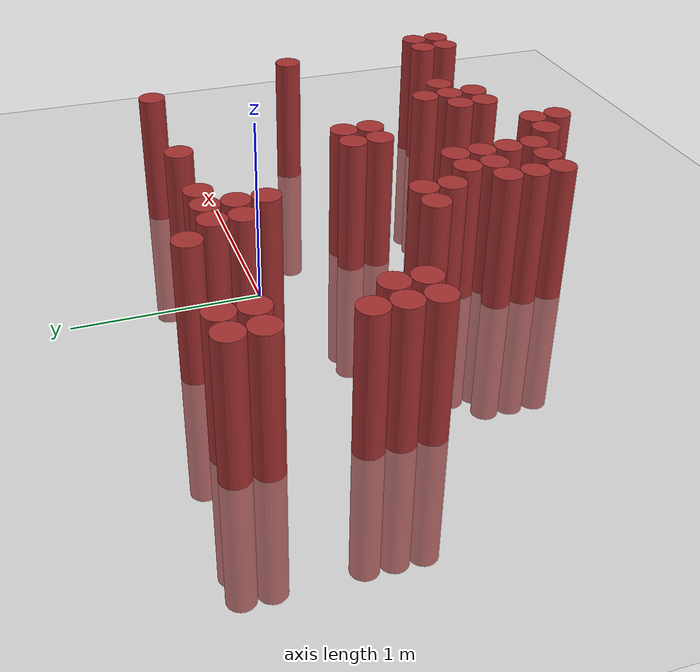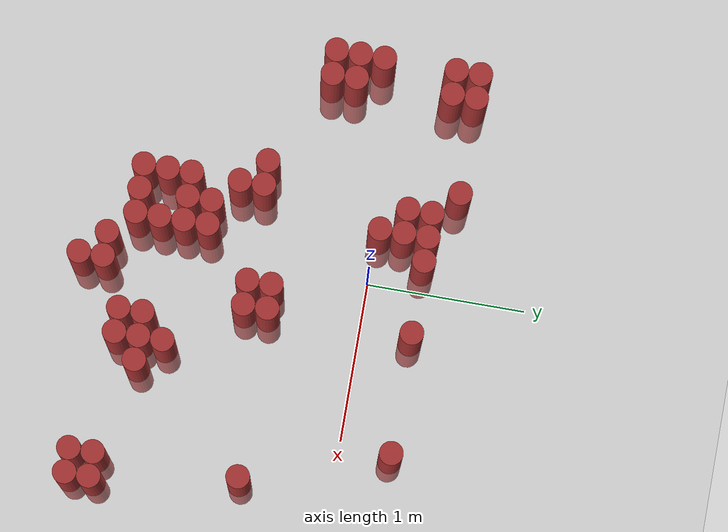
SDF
<sdf version="1.6">
 <world name="default">
  <model name="ground_plane">
   <static>1</static>
   <link name="link">
    <collision name="collision">
     <geometry><plane><normal>0 0 1</normal><size>100 100</size></plane></geometry>
     <surface><friction><ode><mu>100</mu><mu2>50</mu2></ode></friction></surface>
    </collision>
    <visual name="visual">
     <cast_shadows>0</cast_shadows>
     <geometry><plane><normal>0 0 1</normal><size>100 100</size></plane></geometry>
     <material>
      <script><uri>file://media/materials/scripts/gazebo.material</uri><name>Gazebo/Grey</name></script>
     </material>
    </visual>
   </link>
  </model>
  <model name="unit_cylinder_318">
   <static>1</static>
   <pose>-1.325000 -0.425000 0.000000 0.000000 0.000000 0.000000</pose>
   <link name="link">
    <inertial>
     <mass>1</mass>
     <inertia><ixx>0.145833</ixx><ixy>0</ixy><ixz>0</ixz><iyy>0.145833</iyy><iyz>0</iyz><izz>0.125</izz></inertia>
    </inertial>
    <collision name="collision">
     <geometry><cylinder><radius>0.075000</radius><length>1.5</length></cylinder></geometry>
    </collision>
    <visual name="visual">
     <geometry><cylinder><radius>0.075000</radius><length>1.5</length></cylinder></geometry>
     <material>
      <ambient>0.648000 0.192000 0.192000 1</ambient>
      <diffuse>0.648000 0.192000 0.192000 1</diffuse>
     </material>
     <material>
      <script><name>Gazebo/Grey</name><uri>file://media/materials/scripts/gazebo.material</uri></script>
     </material>
    </visual>
   </link>
  </model>
  <model name="unit_cylinder_319">
   <static>1</static>
   <pose>-1.325000 -0.275000 0.000000 0.000000 0.000000 0.000000</pose>
   <link name="link">
    <inertial>
     <mass>1</mass>
     <inertia><ixx>0.145833</ixx><ixy>0</ixy><ixz>0</ixz><iyy>0.145833</iyy><iyz>0</iyz><izz>0.125</izz></inertia>
    </inertial>
    <collision name="collision">
     <geometry><cylinder><radius>0.075000</radius><length>1.5</length></cylinder></geometry>
    </collision>
    <visual name="visual">
     <geometry><cylinder><radius>0.075000</radius><length>1.5</length></cylinder></geometry>
     <material>
      <ambient>0.648000 0.192000 0.192000 1</ambient>
      <diffuse>0.648000 0.192000 0.192000 1</diffuse>
     </material>
     <material>
      <script><name>Gazebo/Grey</name><uri>file://media/materials/scripts/gazebo.material</uri></script>
     </material>
    </visual>
   </link>
  </model>
  <model name="unit_cylinder_320">
   <static>1</static>
   <pose>-1.325000 -0.125000 0.000000 0.000000 0.000000 0.000000</pose>
   <link name="link">
    <inertial>
     <mass>1</mass>
     <inertia><ixx>0.145833</ixx><ixy>0</ixy><ixz>0</ixz><iyy>0.145833</iyy><iyz>0</iyz><izz>0.125</izz></inertia>
    </inertial>
    <collision name="collision">
     <geometry><cylinder><radius>0.075000</radius><length>1.5</length></cylinder></geometry>
    </collision>
    <visual name="visual">
     <geometry><cylinder><radius>0.075000</radius><length>1.5</length></cylinder></geometry>
     <material>
      <ambient>0.648000 0.192000 0.192000 1</ambient>
      <diffuse>0.648000 0.192000 0.192000 1</diffuse>
     </material>
     <material>
      <script><name>Gazebo/Grey</name><uri>file://media/materials/scripts/gazebo.material</uri></script>
     </material>
    </visual>
   </link>
  </model>
  <model name="unit_cylinder_321">
   <static>1</static>
   <pose>-1.325000 0.325000 0.000000 0.000000 0.000000 0.000000</pose>
   <link name="link">
    <inertial>
     <mass>1</mass>
     <inertia><ixx>0.145833</ixx><ixy>0</ixy><ixz>0</ixz><iyy>0.145833</iyy><iyz>0</iyz><izz>0.125</izz></inertia>
    </inertial>
    <collision name="collision">
     <geometry><cylinder><radius>0.075000</radius><length>1.5</length></cylinder></geometry>
    </collision>
    <visual name="visual">
     <geometry><cylinder><radius>0.075000</radius><length>1.5</length></cylinder></geometry>
     <material>
      <ambient>0.648000 0.192000 0.192000 1</ambient>
      <diffuse>0.648000 0.192000 0.192000 1</diffuse>
     </material>
     <material>
      <script><name>Gazebo/Grey</name><uri>file://media/materials/scripts/gazebo.material</uri></script>
     </material>
    </visual>
   </link>
  </model>
  <model name="unit_cylinder_322">
   <static>1</static>
   <pose>-1.325000 0.475000 0.000000 0.000000 0.000000 0.000000</pose>
   <link name="link">
    <inertial>
     <mass>1</mass>
     <inertia><ixx>0.145833</ixx><ixy>0</ixy><ixz>0</ixz><iyy>0.145833</iyy><iyz>0</iyz><izz>0.125</izz></inertia>
    </inertial>
    <collision name="collision">
     <geometry><cylinder><radius>0.075000</radius><length>1.5</length></cylinder></geometry>
    </collision>
    <visual name="visual">
     <geometry><cylinder><radius>0.075000</radius><length>1.5</length></cylinder></geometry>
     <material>
      <ambient>0.648000 0.192000 0.192000 1</ambient>
      <diffuse>0.648000 0.192000 0.192000 1</diffuse>
     </material>
     <material>
      <script><name>Gazebo/Grey</name><uri>file://media/materials/scripts/gazebo.material</uri></script>
     </material>
    </visual>
   </link>
  </model>
  <model name="unit_cylinder_323">
   <static>1</static>
   <pose>-1.175000 -0.425000 0.000000 0.000000 0.000000 0.000000</pose>
   <link name="link">
    <inertial>
     <mass>1</mass>
     <inertia><ixx>0.145833</ixx><ixy>0</ixy><ixz>0</ixz><iyy>0.145833</iyy><iyz>0</iyz><izz>0.125</izz></inertia>
    </inertial>
    <collision name="collision">
     <geometry><cylinder><radius>0.075000</radius><length>1.5</length></cylinder></geometry>
    </collision>
    <visual name="visual">
     <geometry><cylinder><radius>0.075000</radius><length>1.5</length></cylinder></geometry>
     <material>
      <ambient>0.648000 0.192000 0.192000 1</ambient>
      <diffuse>0.648000 0.192000 0.192000 1</diffuse>
     </material>
     <material>
      <script><name>Gazebo/Grey</name><uri>file://media/materials/scripts/gazebo.material</uri></script>
     </material>
    </visual>
   </link>
  </model>
  <model name="unit_cylinder_324">
   <static>1</static>
   <pose>-1.175000 -0.275000 0.000000 0.000000 0.000000 0.000000</pose>
   <link name="link">
    <inertial>
     <mass>1</mass>
     <inertia><ixx>0.145833</ixx><ixy>0</ixy><ixz>0</ixz><iyy>0.145833</iyy><iyz>0</iyz><izz>0.125</izz></inertia>
    </inertial>
    <collision name="collision">
     <geometry><cylinder><radius>0.075000</radius><length>1.5</length></cylinder></geometry>
    </collision>
    <visual name="visual">
     <geometry><cylinder><radius>0.075000</radius><length>1.5</length></cylinder></geometry>
     <material>
      <ambient>0.648000 0.192000 0.192000 1</ambient>
      <diffuse>0.648000 0.192000 0.192000 1</diffuse>
     </material>
     <material>
      <script><name>Gazebo/Grey</name><uri>file://media/materials/scripts/gazebo.material</uri></script>
     </material>
    </visual>
   </link>
  </model>
  <model name="unit_cylinder_325">
   <static>1</static>
   <pose>-1.175000 0.325000 0.000000 0.000000 0.000000 0.000000</pose>
   <link name="link">
    <inertial>
     <mass>1</mass>
     <inertia><ixx>0.145833</ixx><ixy>0</ixy><ixz>0</ixz><iyy>0.145833</iyy><iyz>0</iyz><izz>0.125</izz></inertia>
    </inertial>
    <collision name="collision">
     <geometry><cylinder><radius>0.075000</radius><length>1.5</length></cylinder></geometry>
    </collision>
    <visual name="visual">
     <geometry><cylinder><radius>0.075000</radius><length>1.5</length></cylinder></geometry>
     <material>
      <ambient>0.648000 0.192000 0.192000 1</ambient>
      <diffuse>0.648000 0.192000 0.192000 1</diffuse>
     </material>
     <material>
      <script><name>Gazebo/Grey</name><uri>file://media/materials/scripts/gazebo.material</uri></script>
     </material>
    </visual>
   </link>
  </model>
  <model name="unit_cylinder_326">
   <static>1</static>
   <pose>-1.175000 0.475000 0.000000 0.000000 0.000000 0.000000</pose>
   <link name="link">
    <inertial>
     <mass>1</mass>
     <inertia><ixx>0.145833</ixx><ixy>0</ixy><ixz>0</ixz><iyy>0.145833</iyy><iyz>0</iyz><izz>0.125</izz></inertia>
    </inertial>
    <collision name="collision">
     <geometry><cylinder><radius>0.075000</radius><length>1.5</length></cylinder></geometry>
    </collision>
    <visual name="visual">
     <geometry><cylinder><radius>0.075000</radius><length>1.5</length></cylinder></geometry>
     <material>
      <ambient>0.648000 0.192000 0.192000 1</ambient>
      <diffuse>0.648000 0.192000 0.192000 1</diffuse>
     </material>
     <material>
      <script><name>Gazebo/Grey</name><uri>file://media/materials/scripts/gazebo.material</uri></script>
     </material>
    </visual>
   </link>
  </model>
  <model name="unit_cylinder_328">
   <static>1</static>
   <pose>-0.575000 -0.725000 0.000000 0.000000 0.000000 0.000000</pose>
   <link name="link">
    <inertial>
     <mass>1</mass>
     <inertia><ixx>0.145833</ixx><ixy>0</ixy><ixz>0</ixz><iyy>0.145833</iyy><iyz>0</iyz><izz>0.125</izz></inertia>
    </inertial>
    <collision name="collision">
     <geometry><cylinder><radius>0.075000</radius><length>1.5</length></cylinder></geometry>
    </collision>
    <visual name="visual">
     <geometry><cylinder><radius>0.075000</radius><length>1.5</length></cylinder></geometry>
     <material>
      <ambient>0.648000 0.192000 0.192000 1</ambient>
      <diffuse>0.648000 0.192000 0.192000 1</diffuse>
     </material>
     <material>
      <script><name>Gazebo/Grey</name><uri>file://media/materials/scripts/gazebo.material</uri></script>
     </material>
    </visual>
   </link>
  </model>
  <model name="unit_cylinder_329">
   <static>1</static>
   <pose>-0.575000 0.475000 0.000000 0.000000 0.000000 0.000000</pose>
   <link name="link">
    <inertial>
     <mass>1</mass>
     <inertia><ixx>0.145833</ixx><ixy>0</ixy><ixz>0</ixz><iyy>0.145833</iyy><iyz>0</iyz><izz>0.125</izz></inertia>
    </inertial>
    <collision name="collision">
     <geometry><cylinder><radius>0.075000</radius><length>1.5</length></cylinder></geometry>
    </collision>
    <visual name="visual">
     <geometry><cylinder><radius>0.075000</radius><length>1.5</length></cylinder></geometry>
     <material>
      <ambient>0.648000 0.192000 0.192000 1</ambient>
      <diffuse>0.648000 0.192000 0.192000 1</diffuse>
     </material>
     <material>
      <script><name>Gazebo/Grey</name><uri>file://media/materials/scripts/gazebo.material</uri></script>
     </material>
    </visual>
   </link>
  </model>
  <model name="unit_cylinder_334">
   <static>1</static>
   <pose>-0.425000 -1.475000 0.000000 0.000000 0.000000 0.000000</pose>
   <link name="link">
    <inertial>
     <mass>1</mass>
     <inertia><ixx>0.145833</ixx><ixy>0</ixy><ixz>0</ixz><iyy>0.145833</iyy><iyz>0</iyz><izz>0.125</izz></inertia>
    </inertial>
    <collision name="collision">
     <geometry><cylinder><radius>0.075000</radius><length>1.5</length></cylinder></geometry>
    </collision>
    <visual name="visual">
     <geometry><cylinder><radius>0.075000</radius><length>1.5</length></cylinder></geometry>
     <material>
      <ambient>0.648000 0.192000 0.192000 1</ambient>
      <diffuse>0.648000 0.192000 0.192000 1</diffuse>
     </material>
     <material>
      <script><name>Gazebo/Grey</name><uri>file://media/materials/scripts/gazebo.material</uri></script>
     </material>
    </visual>
   </link>
  </model>
  <model name="unit_cylinder_335">
   <static>1</static>
   <pose>-0.425000 -1.325000 0.000000 0.000000 0.000000 0.000000</pose>
   <link name="link">
    <inertial>
     <mass>1</mass>
     <inertia><ixx>0.145833</ixx><ixy>0</ixy><ixz>0</ixz><iyy>0.145833</iyy><iyz>0</iyz><izz>0.125</izz></inertia>
    </inertial>
    <collision name="collision">
     <geometry><cylinder><radius>0.075000</radius><length>1.5</length></cylinder></geometry>
    </collision>
    <visual name="visual">
     <geometry><cylinder><radius>0.075000</radius><length>1.5</length></cylinder></geometry>
     <material>
      <ambient>0.648000 0.192000 0.192000 1</ambient>
      <diffuse>0.648000 0.192000 0.192000 1</diffuse>
     </material>
     <material>
      <script><name>Gazebo/Grey</name><uri>file://media/materials/scripts/gazebo.material</uri></script>
     </material>
    </visual>
   </link>
  </model>
  <model name="unit_cylinder_336">
   <static>1</static>
   <pose>-0.425000 -1.175000 0.000000 0.000000 0.000000 0.000000</pose>
   <link name="link">
    <inertial>
     <mass>1</mass>
     <inertia><ixx>0.145833</ixx><ixy>0</ixy><ixz>0</ixz><iyy>0.145833</iyy><iyz>0</iyz><izz>0.125</izz></inertia>
    </inertial>
    <collision name="collision">
     <geometry><cylinder><radius>0.075000</radius><length>1.5</length></cylinder></geometry>
    </collision>
    <visual name="visual">
     <geometry><cylinder><radius>0.075000</radius><length>1.5</length></cylinder></geometry>
     <material>
      <ambient>0.648000 0.192000 0.192000 1</ambient>
      <diffuse>0.648000 0.192000 0.192000 1</diffuse>
     </material>
     <material>
      <script><name>Gazebo/Grey</name><uri>file://media/materials/scripts/gazebo.material</uri></script>
     </material>
    </visual>
   </link>
  </model>
  <model name="unit_cylinder_337">
   <static>1</static>
   <pose>-0.425000 -0.875000 0.000000 0.000000 0.000000 0.000000</pose>
   <link name="link">
    <inertial>
     <mass>1</mass>
     <inertia><ixx>0.145833</ixx><ixy>0</ixy><ixz>0</ixz><iyy>0.145833</iyy><iyz>0</iyz><izz>0.125</izz></inertia>
    </inertial>
    <collision name="collision">
     <geometry><cylinder><radius>0.075000</radius><length>1.5</length></cylinder></geometry>
    </collision>
    <visual name="visual">
     <geometry><cylinder><radius>0.075000</radius><length>1.5</length></cylinder></geometry>
     <material>
      <ambient>0.648000 0.192000 0.192000 1</ambient>
      <diffuse>0.648000 0.192000 0.192000 1</diffuse>
     </material>
     <material>
      <script><name>Gazebo/Grey</name><uri>file://media/materials/scripts/gazebo.material</uri></script>
     </material>
    </visual>
   </link>
  </model>
  <model name="unit_cylinder_338">
   <static>1</static>
   <pose>-0.425000 -0.725000 0.000000 0.000000 0.000000 0.000000</pose>
   <link name="link">
    <inertial>
     <mass>1</mass>
     <inertia><ixx>0.145833</ixx><ixy>0</ixy><ixz>0</ixz><iyy>0.145833</iyy><iyz>0</iyz><izz>0.125</izz></inertia>
    </inertial>
    <collision name="collision">
     <geometry><cylinder><radius>0.075000</radius><length>1.5</length></cylinder></geometry>
    </collision>
    <visual name="visual">
     <geometry><cylinder><radius>0.075000</radius><length>1.5</length></cylinder></geometry>
     <material>
      <ambient>0.648000 0.192000 0.192000 1</ambient>
      <diffuse>0.648000 0.192000 0.192000 1</diffuse>
     </material>
     <material>
      <script><name>Gazebo/Grey</name><uri>file://media/materials/scripts/gazebo.material</uri></script>
     </material>
    </visual>
   </link>
  </model>
  <model name="unit_cylinder_339">
   <static>1</static>
   <pose>-0.425000 0.175000 0.000000 0.000000 0.000000 0.000000</pose>
   <link name="link">
    <inertial>
     <mass>1</mass>
     <inertia><ixx>0.145833</ixx><ixy>0</ixy><ixz>0</ixz><iyy>0.145833</iyy><iyz>0</iyz><izz>0.125</izz></inertia>
    </inertial>
    <collision name="collision">
     <geometry><cylinder><radius>0.075000</radius><length>1.5</length></cylinder></geometry>
    </collision>
    <visual name="visual">
     <geometry><cylinder><radius>0.075000</radius><length>1.5</length></cylinder></geometry>
     <material>
      <ambient>0.648000 0.192000 0.192000 1</ambient>
      <diffuse>0.648000 0.192000 0.192000 1</diffuse>
     </material>
     <material>
      <script><name>Gazebo/Grey</name><uri>file://media/materials/scripts/gazebo.material</uri></script>
     </material>
    </visual>
   </link>
  </model>
  <model name="unit_cylinder_340">
   <static>1</static>
   <pose>-0.425000 0.325000 0.000000 0.000000 0.000000 0.000000</pose>
   <link name="link">
    <inertial>
     <mass>1</mass>
     <inertia><ixx>0.145833</ixx><ixy>0</ixy><ixz>0</ixz><iyy>0.145833</iyy><iyz>0</iyz><izz>0.125</izz></inertia>
    </inertial>
    <collision name="collision">
     <geometry><cylinder><radius>0.075000</radius><length>1.5</length></cylinder></geometry>
    </collision>
    <visual name="visual">
     <geometry><cylinder><radius>0.075000</radius><length>1.5</length></cylinder></geometry>
     <material>
      <ambient>0.648000 0.192000 0.192000 1</ambient>
      <diffuse>0.648000 0.192000 0.192000 1</diffuse>
     </material>
     <material>
      <script><name>Gazebo/Grey</name><uri>file://media/materials/scripts/gazebo.material</uri></script>
     </material>
    </visual>
   </link>
  </model>
  <model name="unit_cylinder_351">
   <static>1</static>
   <pose>-0.275000 -1.475000 0.000000 0.000000 0.000000 0.000000</pose>
   <link name="link">
    <inertial>
     <mass>1</mass>
     <inertia><ixx>0.145833</ixx><ixy>0</ixy><ixz>0</ixz><iyy>0.145833</iyy><iyz>0</iyz><izz>0.125</izz></inertia>
    </inertial>
    <collision name="collision">
     <geometry><cylinder><radius>0.075000</radius><length>1.5</length></cylinder></geometry>
    </collision>
    <visual name="visual">
     <geometry><cylinder><radius>0.075000</radius><length>1.5</length></cylinder></geometry>
     <material>
      <ambient>0.648000 0.192000 0.192000 1</ambient>
      <diffuse>0.648000 0.192000 0.192000 1</diffuse>
     </material>
     <material>
      <script><name>Gazebo/Grey</name><uri>file://media/materials/scripts/gazebo.material</uri></script>
     </material>
    </visual>
   </link>
  </model>
  <model name="unit_cylinder_352">
   <static>1</static>
   <pose>-0.275000 -1.175000 0.000000 0.000000 0.000000 0.000000</pose>
   <link name="link">
    <inertial>
     <mass>1</mass>
     <inertia><ixx>0.145833</ixx><ixy>0</ixy><ixz>0</ixz><iyy>0.145833</iyy><iyz>0</iyz><izz>0.125</izz></inertia>
    </inertial>
    <collision name="collision">
     <geometry><cylinder><radius>0.075000</radius><length>1.5</length></cylinder></geometry>
    </collision>
    <visual name="visual">
     <geometry><cylinder><radius>0.075000</radius><length>1.5</length></cylinder></geometry>
     <material>
      <ambient>0.648000 0.192000 0.192000 1</ambient>
      <diffuse>0.648000 0.192000 0.192000 1</diffuse>
     </material>
     <material>
      <script><name>Gazebo/Grey</name><uri>file://media/materials/scripts/gazebo.material</uri></script>
     </material>
    </visual>
   </link>
  </model>
  <model name="unit_cylinder_353">
   <static>1</static>
   <pose>-0.275000 -1.025000 0.000000 0.000000 0.000000 0.000000</pose>
   <link name="link">
    <inertial>
     <mass>1</mass>
     <inertia><ixx>0.145833</ixx><ixy>0</ixy><ixz>0</ixz><iyy>0.145833</iyy><iyz>0</iyz><izz>0.125</izz></inertia>
    </inertial>
    <collision name="collision">
     <geometry><cylinder><radius>0.075000</radius><length>1.5</length></cylinder></geometry>
    </collision>
    <visual name="visual">
     <geometry><cylinder><radius>0.075000</radius><length>1.5</length></cylinder></geometry>
     <material>
      <ambient>0.648000 0.192000 0.192000 1</ambient>
      <diffuse>0.648000 0.192000 0.192000 1</diffuse>
     </material>
     <material>
      <script><name>Gazebo/Grey</name><uri>file://media/materials/scripts/gazebo.material</uri></script>
     </material>
    </visual>
   </link>
  </model>
  <model name="unit_cylinder_354">
   <static>1</static>
   <pose>-0.275000 0.025000 0.000000 0.000000 0.000000 0.000000</pose>
   <link name="link">
    <inertial>
     <mass>1</mass>
     <inertia><ixx>0.145833</ixx><ixy>0</ixy><ixz>0</ixz><iyy>0.145833</iyy><iyz>0</iyz><izz>0.125</izz></inertia>
    </inertial>
    <collision name="collision">
     <geometry><cylinder><radius>0.075000</radius><length>1.5</length></cylinder></geometry>
    </collision>
    <visual name="visual">
     <geometry><cylinder><radius>0.075000</radius><length>1.5</length></cylinder></geometry>
     <material>
      <ambient>0.648000 0.192000 0.192000 1</ambient>
      <diffuse>0.648000 0.192000 0.192000 1</diffuse>
     </material>
     <material>
      <script><name>Gazebo/Grey</name><uri>file://media/materials/scripts/gazebo.material</uri></script>
     </material>
    </visual>
   </link>
  </model>
  <model name="unit_cylinder_355">
   <static>1</static>
   <pose>-0.275000 0.175000 0.000000 0.000000 0.000000 0.000000</pose>
   <link name="link">
    <inertial>
     <mass>1</mass>
     <inertia><ixx>0.145833</ixx><ixy>0</ixy><ixz>0</ixz><iyy>0.145833</iyy><iyz>0</iyz><izz>0.125</izz></inertia>
    </inertial>
    <collision name="collision">
     <geometry><cylinder><radius>0.075000</radius><length>1.5</length></cylinder></geometry>
    </collision>
    <visual name="visual">
     <geometry><cylinder><radius>0.075000</radius><length>1.5</length></cylinder></geometry>
     <material>
      <ambient>0.648000 0.192000 0.192000 1</ambient>
      <diffuse>0.648000 0.192000 0.192000 1</diffuse>
     </material>
     <material>
      <script><name>Gazebo/Grey</name><uri>file://media/materials/scripts/gazebo.material</uri></script>
     </material>
    </visual>
   </link>
  </model>
  <model name="unit_cylinder_356">
   <static>1</static>
   <pose>-0.275000 0.325000 0.000000 0.000000 0.000000 0.000000</pose>
   <link name="link">
    <inertial>
     <mass>1</mass>
     <inertia><ixx>0.145833</ixx><ixy>0</ixy><ixz>0</ixz><iyy>0.145833</iyy><iyz>0</iyz><izz>0.125</izz></inertia>
    </inertial>
    <collision name="collision">
     <geometry><cylinder><radius>0.075000</radius><length>1.5</length></cylinder></geometry>
    </collision>
    <visual name="visual">
     <geometry><cylinder><radius>0.075000</radius><length>1.5</length></cylinder></geometry>
     <material>
      <ambient>0.648000 0.192000 0.192000 1</ambient>
      <diffuse>0.648000 0.192000 0.192000 1</diffuse>
     </material>
     <material>
      <script><name>Gazebo/Grey</name><uri>file://media/materials/scripts/gazebo.material</uri></script>
     </material>
    </visual>
   </link>
  </model>
  <model name="unit_cylinder_365">
   <static>1</static>
   <pose>-0.125000 -1.475000 0.000000 0.000000 0.000000 0.000000</pose>
   <link name="link">
    <inertial>
     <mass>1</mass>
     <inertia><ixx>0.145833</ixx><ixy>0</ixy><ixz>0</ixz><iyy>0.145833</iyy><iyz>0</iyz><izz>0.125</izz></inertia>
    </inertial>
    <collision name="collision">
     <geometry><cylinder><radius>0.075000</radius><length>1.5</length></cylinder></geometry>
    </collision>
    <visual name="visual">
     <geometry><cylinder><radius>0.075000</radius><length>1.5</length></cylinder></geometry>
     <material>
      <ambient>0.648000 0.192000 0.192000 1</ambient>
      <diffuse>0.648000 0.192000 0.192000 1</diffuse>
     </material>
     <material>
      <script><name>Gazebo/Grey</name><uri>file://media/materials/scripts/gazebo.material</uri></script>
     </material>
    </visual>
   </link>
  </model>
  <model name="unit_cylinder_366">
   <static>1</static>
   <pose>-0.125000 -1.325000 0.000000 0.000000 0.000000 0.000000</pose>
   <link name="link">
    <inertial>
     <mass>1</mass>
     <inertia><ixx>0.145833</ixx><ixy>0</ixy><ixz>0</ixz><iyy>0.145833</iyy><iyz>0</iyz><izz>0.125</izz></inertia>
    </inertial>
    <collision name="collision">
     <geometry><cylinder><radius>0.075000</radius><length>1.5</length></cylinder></geometry>
    </collision>
    <visual name="visual">
     <geometry><cylinder><radius>0.075000</radius><length>1.5</length></cylinder></geometry>
     <material>
      <ambient>0.648000 0.192000 0.192000 1</ambient>
      <diffuse>0.648000 0.192000 0.192000 1</diffuse>
     </material>
     <material>
      <script><name>Gazebo/Grey</name><uri>file://media/materials/scripts/gazebo.material</uri></script>
     </material>
    </visual>
   </link>
  </model>
  <model name="unit_cylinder_367">
   <static>1</static>
   <pose>-0.125000 -1.175000 0.000000 0.000000 0.000000 0.000000</pose>
   <link name="link">
    <inertial>
     <mass>1</mass>
     <inertia><ixx>0.145833</ixx><ixy>0</ixy><ixz>0</ixz><iyy>0.145833</iyy><iyz>0</iyz><izz>0.125</izz></inertia>
    </inertial>
    <collision name="collision">
     <geometry><cylinder><radius>0.075000</radius><length>1.5</length></cylinder></geometry>
    </collision>
    <visual name="visual">
     <geometry><cylinder><radius>0.075000</radius><length>1.5</length></cylinder></geometry>
     <material>
      <ambient>0.648000 0.192000 0.192000 1</ambient>
      <diffuse>0.648000 0.192000 0.192000 1</diffuse>
     </material>
     <material>
      <script><name>Gazebo/Grey</name><uri>file://media/materials/scripts/gazebo.material</uri></script>
     </material>
    </visual>
   </link>
  </model>
  <model name="unit_cylinder_368">
   <static>1</static>
   <pose>-0.125000 -1.025000 0.000000 0.000000 0.000000 0.000000</pose>
   <link name="link">
    <inertial>
     <mass>1</mass>
     <inertia><ixx>0.145833</ixx><ixy>0</ixy><ixz>0</ixz><iyy>0.145833</iyy><iyz>0</iyz><izz>0.125</izz></inertia>
    </inertial>
    <collision name="collision">
     <geometry><cylinder><radius>0.075000</radius><length>1.5</length></cylinder></geometry>
    </collision>
    <visual name="visual">
     <geometry><cylinder><radius>0.075000</radius><length>1.5</length></cylinder></geometry>
     <material>
      <ambient>0.648000 0.192000 0.192000 1</ambient>
      <diffuse>0.648000 0.192000 0.192000 1</diffuse>
     </material>
     <material>
      <script><name>Gazebo/Grey</name><uri>file://media/materials/scripts/gazebo.material</uri></script>
     </material>
    </visual>
   </link>
  </model>
  <model name="unit_cylinder_369">
   <static>1</static>
   <pose>-0.125000 0.325000 0.000000 0.000000 0.000000 0.000000</pose>
   <link name="link">
    <inertial>
     <mass>1</mass>
     <inertia><ixx>0.145833</ixx><ixy>0</ixy><ixz>0</ixz><iyy>0.145833</iyy><iyz>0</iyz><izz>0.125</izz></inertia>
    </inertial>
    <collision name="collision">
     <geometry><cylinder><radius>0.075000</radius><length>1.5</length></cylinder></geometry>
    </collision>
    <visual name="visual">
     <geometry><cylinder><radius>0.075000</radius><length>1.5</length></cylinder></geometry>
     <material>
      <ambient>0.648000 0.192000 0.192000 1</ambient>
      <diffuse>0.648000 0.192000 0.192000 1</diffuse>
     </material>
     <material>
      <script><name>Gazebo/Grey</name><uri>file://media/materials/scripts/gazebo.material</uri></script>
     </material>
    </visual>
   </link>
  </model>
  <model name="unit_cylinder_372">
   <static>1</static>
   <pose>0.025000 -1.625000 0.000000 0.000000 0.000000 0.000000</pose>
   <link name="link">
    <inertial>
     <mass>1</mass>
     <inertia><ixx>0.145833</ixx><ixy>0</ixy><ixz>0</ixz><iyy>0.145833</iyy><iyz>0</iyz><izz>0.125</izz></inertia>
    </inertial>
    <collision name="collision">
     <geometry><cylinder><radius>0.075000</radius><length>1.5</length></cylinder></geometry>
    </collision>
    <visual name="visual">
     <geometry><cylinder><radius>0.075000</radius><length>1.5</length></cylinder></geometry>
     <material>
      <ambient>0.648000 0.192000 0.192000 1</ambient>
      <diffuse>0.648000 0.192000 0.192000 1</diffuse>
     </material>
     <material>
      <script><name>Gazebo/Grey</name><uri>file://media/materials/scripts/gazebo.material</uri></script>
     </material>
    </visual>
   </link>
  </model>
  <model name="unit_cylinder_373">
   <static>1</static>
   <pose>0.175000 -1.775000 0.000000 0.000000 0.000000 0.000000</pose>
   <link name="link">
    <inertial>
     <mass>1</mass>
     <inertia><ixx>0.145833</ixx><ixy>0</ixy><ixz>0</ixz><iyy>0.145833</iyy><iyz>0</iyz><izz>0.125</izz></inertia>
    </inertial>
    <collision name="collision">
     <geometry><cylinder><radius>0.075000</radius><length>1.5</length></cylinder></geometry>
    </collision>
    <visual name="visual">
     <geometry><cylinder><radius>0.075000</radius><length>1.5</length></cylinder></geometry>
     <material>
      <ambient>0.648000 0.192000 0.192000 1</ambient>
      <diffuse>0.648000 0.192000 0.192000 1</diffuse>
     </material>
     <material>
      <script><name>Gazebo/Grey</name><uri>file://media/materials/scripts/gazebo.material</uri></script>
     </material>
    </visual>
   </link>
  </model>
  <model name="unit_cylinder_374">
   <static>1</static>
   <pose>0.175000 -1.625000 0.000000 0.000000 0.000000 0.000000</pose>
   <link name="link">
    <inertial>
     <mass>1</mass>
     <inertia><ixx>0.145833</ixx><ixy>0</ixy><ixz>0</ixz><iyy>0.145833</iyy><iyz>0</iyz><izz>0.125</izz></inertia>
    </inertial>
    <collision name="collision">
     <geometry><cylinder><radius>0.075000</radius><length>1.5</length></cylinder></geometry>
    </collision>
    <visual name="visual">
     <geometry><cylinder><radius>0.075000</radius><length>1.5</length></cylinder></geometry>
     <material>
      <ambient>0.648000 0.192000 0.192000 1</ambient>
      <diffuse>0.648000 0.192000 0.192000 1</diffuse>
     </material>
     <material>
      <script><name>Gazebo/Grey</name><uri>file://media/materials/scripts/gazebo.material</uri></script>
     </material>
    </visual>
   </link>
  </model>
  <model name="unit_cylinder_375">
   <static>1</static>
   <pose>0.175000 -0.725000 0.000000 0.000000 0.000000 0.000000</pose>
   <link name="link">
    <inertial>
     <mass>1</mass>
     <inertia><ixx>0.145833</ixx><ixy>0</ixy><ixz>0</ixz><iyy>0.145833</iyy><iyz>0</iyz><izz>0.125</izz></inertia>
    </inertial>
    <collision name="collision">
     <geometry><cylinder><radius>0.075000</radius><length>1.5</length></cylinder></geometry>
    </collision>
    <visual name="visual">
     <geometry><cylinder><radius>0.075000</radius><length>1.5</length></cylinder></geometry>
     <material>
      <ambient>0.648000 0.192000 0.192000 1</ambient>
      <diffuse>0.648000 0.192000 0.192000 1</diffuse>
     </material>
     <material>
      <script><name>Gazebo/Grey</name><uri>file://media/materials/scripts/gazebo.material</uri></script>
     </material>
    </visual>
   </link>
  </model>
  <model name="unit_cylinder_376">
   <static>1</static>
   <pose>0.175000 -0.575000 0.000000 0.000000 0.000000 0.000000</pose>
   <link name="link">
    <inertial>
     <mass>1</mass>
     <inertia><ixx>0.145833</ixx><ixy>0</ixy><ixz>0</ixz><iyy>0.145833</iyy><iyz>0</iyz><izz>0.125</izz></inertia>
    </inertial>
    <collision name="collision">
     <geometry><cylinder><radius>0.075000</radius><length>1.5</length></cylinder></geometry>
    </collision>
    <visual name="visual">
     <geometry><cylinder><radius>0.075000</radius><length>1.5</length></cylinder></geometry>
     <material>
      <ambient>0.648000 0.192000 0.192000 1</ambient>
      <diffuse>0.648000 0.192000 0.192000 1</diffuse>
     </material>
     <material>
      <script><name>Gazebo/Grey</name><uri>file://media/materials/scripts/gazebo.material</uri></script>
     </material>
    </visual>
   </link>
  </model>
  <model name="unit_cylinder_378">
   <static>1</static>
   <pose>0.325000 -0.725000 0.000000 0.000000 0.000000 0.000000</pose>
   <link name="link">
    <inertial>
     <mass>1</mass>
     <inertia><ixx>0.145833</ixx><ixy>0</ixy><ixz>0</ixz><iyy>0.145833</iyy><iyz>0</iyz><izz>0.125</izz></inertia>
    </inertial>
    <collision name="collision">
     <geometry><cylinder><radius>0.075000</radius><length>1.5</length></cylinder></geometry>
    </collision>
    <visual name="visual">
     <geometry><cylinder><radius>0.075000</radius><length>1.5</length></cylinder></geometry>
     <material>
      <ambient>0.648000 0.192000 0.192000 1</ambient>
      <diffuse>0.648000 0.192000 0.192000 1</diffuse>
     </material>
     <material>
      <script><name>Gazebo/Grey</name><uri>file://media/materials/scripts/gazebo.material</uri></script>
     </material>
    </visual>
   </link>
  </model>
  <model name="unit_cylinder_379">
   <static>1</static>
   <pose>0.325000 -0.575000 0.000000 0.000000 0.000000 0.000000</pose>
   <link name="link">
    <inertial>
     <mass>1</mass>
     <inertia><ixx>0.145833</ixx><ixy>0</ixy><ixz>0</ixz><iyy>0.145833</iyy><iyz>0</iyz><izz>0.125</izz></inertia>
    </inertial>
    <collision name="collision">
     <geometry><cylinder><radius>0.075000</radius><length>1.5</length></cylinder></geometry>
    </collision>
    <visual name="visual">
     <geometry><cylinder><radius>0.075000</radius><length>1.5</length></cylinder></geometry>
     <material>
      <ambient>0.648000 0.192000 0.192000 1</ambient>
      <diffuse>0.648000 0.192000 0.192000 1</diffuse>
     </material>
     <material>
      <script><name>Gazebo/Grey</name><uri>file://media/materials/scripts/gazebo.material</uri></script>
     </material>
    </visual>
   </link>
  </model>
  <model name="unit_cylinder_380">
   <static>1</static>
   <pose>0.325000 0.325000 0.000000 0.000000 0.000000 0.000000</pose>
   <link name="link">
    <inertial>
     <mass>1</mass>
     <inertia><ixx>0.145833</ixx><ixy>0</ixy><ixz>0</ixz><iyy>0.145833</iyy><iyz>0</iyz><izz>0.125</izz></inertia>
    </inertial>
    <collision name="collision">
     <geometry><cylinder><radius>0.075000</radius><length>1.5</length></cylinder></geometry>
    </collision>
    <visual name="visual">
     <geometry><cylinder><radius>0.075000</radius><length>1.5</length></cylinder></geometry>
     <material>
      <ambient>0.648000 0.192000 0.192000 1</ambient>
      <diffuse>0.648000 0.192000 0.192000 1</diffuse>
     </material>
     <material>
      <script><name>Gazebo/Grey</name><uri>file://media/materials/scripts/gazebo.material</uri></script>
     </material>
    </visual>
   </link>
  </model>
  <model name="unit_cylinder_382">
   <static>1</static>
   <pose>0.475000 -1.475000 0.000000 0.000000 0.000000 0.000000</pose>
   <link name="link">
    <inertial>
     <mass>1</mass>
     <inertia><ixx>0.145833</ixx><ixy>0</ixy><ixz>0</ixz><iyy>0.145833</iyy><iyz>0</iyz><izz>0.125</izz></inertia>
    </inertial>
    <collision name="collision">
     <geometry><cylinder><radius>0.075000</radius><length>1.5</length></cylinder></geometry>
    </collision>
    <visual name="visual">
     <geometry><cylinder><radius>0.075000</radius><length>1.5</length></cylinder></geometry>
     <material>
      <ambient>0.648000 0.192000 0.192000 1</ambient>
      <diffuse>0.648000 0.192000 0.192000 1</diffuse>
     </material>
     <material>
      <script><name>Gazebo/Grey</name><uri>file://media/materials/scripts/gazebo.material</uri></script>
     </material>
    </visual>
   </link>
  </model>
  <model name="unit_cylinder_383">
   <static>1</static>
   <pose>0.475000 -1.325000 0.000000 0.000000 0.000000 0.000000</pose>
   <link name="link">
    <inertial>
     <mass>1</mass>
     <inertia><ixx>0.145833</ixx><ixy>0</ixy><ixz>0</ixz><iyy>0.145833</iyy><iyz>0</iyz><izz>0.125</izz></inertia>
    </inertial>
    <collision name="collision">
     <geometry><cylinder><radius>0.075000</radius><length>1.5</length></cylinder></geometry>
    </collision>
    <visual name="visual">
     <geometry><cylinder><radius>0.075000</radius><length>1.5</length></cylinder></geometry>
     <material>
      <ambient>0.648000 0.192000 0.192000 1</ambient>
      <diffuse>0.648000 0.192000 0.192000 1</diffuse>
     </material>
     <material>
      <script><name>Gazebo/Grey</name><uri>file://media/materials/scripts/gazebo.material</uri></script>
     </material>
    </visual>
   </link>
  </model>
  <model name="unit_cylinder_385">
   <static>1</static>
   <pose>0.625000 -1.475000 0.000000 0.000000 0.000000 0.000000</pose>
   <link name="link">
    <inertial>
     <mass>1</mass>
     <inertia><ixx>0.145833</ixx><ixy>0</ixy><ixz>0</ixz><iyy>0.145833</iyy><iyz>0</iyz><izz>0.125</izz></inertia>
    </inertial>
    <collision name="collision">
     <geometry><cylinder><radius>0.075000</radius><length>1.5</length></cylinder></geometry>
    </collision>
    <visual name="visual">
     <geometry><cylinder><radius>0.075000</radius><length>1.5</length></cylinder></geometry>
     <material>
      <ambient>0.648000 0.192000 0.192000 1</ambient>
      <diffuse>0.648000 0.192000 0.192000 1</diffuse>
     </material>
     <material>
      <script><name>Gazebo/Grey</name><uri>file://media/materials/scripts/gazebo.material</uri></script>
     </material>
    </visual>
   </link>
  </model>
  <model name="unit_cylinder_386">
   <static>1</static>
   <pose>0.625000 -1.325000 0.000000 0.000000 0.000000 0.000000</pose>
   <link name="link">
    <inertial>
     <mass>1</mass>
     <inertia><ixx>0.145833</ixx><ixy>0</ixy><ixz>0</ixz><iyy>0.145833</iyy><iyz>0</iyz><izz>0.125</izz></inertia>
    </inertial>
    <collision name="collision">
     <geometry><cylinder><radius>0.075000</radius><length>1.5</length></cylinder></geometry>
    </collision>
    <visual name="visual">
     <geometry><cylinder><radius>0.075000</radius><length>1.5</length></cylinder></geometry>
     <material>
      <ambient>0.648000 0.192000 0.192000 1</ambient>
      <diffuse>0.648000 0.192000 0.192000 1</diffuse>
     </material>
     <material>
      <script><name>Gazebo/Grey</name><uri>file://media/materials/scripts/gazebo.material</uri></script>
     </material>
    </visual>
   </link>
  </model>
  <model name="unit_cylinder_387">
   <static>1</static>
   <pose>0.625000 -1.175000 0.000000 0.000000 0.000000 0.000000</pose>
   <link name="link">
    <inertial>
     <mass>1</mass>
     <inertia><ixx>0.145833</ixx><ixy>0</ixy><ixz>0</ixz><iyy>0.145833</iyy><iyz>0</iyz><izz>0.125</izz></inertia>
    </inertial>
    <collision name="collision">
     <geometry><cylinder><radius>0.075000</radius><length>1.5</length></cylinder></geometry>
    </collision>
    <visual name="visual">
     <geometry><cylinder><radius>0.075000</radius><length>1.5</length></cylinder></geometry>
     <material>
      <ambient>0.648000 0.192000 0.192000 1</ambient>
      <diffuse>0.648000 0.192000 0.192000 1</diffuse>
     </material>
     <material>
      <script><name>Gazebo/Grey</name><uri>file://media/materials/scripts/gazebo.material</uri></script>
     </material>
    </visual>
   </link>
  </model>
  <model name="unit_cylinder_388">
   <static>1</static>
   <pose>0.775000 -1.325000 0.000000 0.000000 0.000000 0.000000</pose>
   <link name="link">
    <inertial>
     <mass>1</mass>
     <inertia><ixx>0.145833</ixx><ixy>0</ixy><ixz>0</ixz><iyy>0.145833</iyy><iyz>0</iyz><izz>0.125</izz></inertia>
    </inertial>
    <collision name="collision">
     <geometry><cylinder><radius>0.075000</radius><length>1.5</length></cylinder></geometry>
    </collision>
    <visual name="visual">
     <geometry><cylinder><radius>0.075000</radius><length>1.5</length></cylinder></geometry>
     <material>
      <ambient>0.648000 0.192000 0.192000 1</ambient>
      <diffuse>0.648000 0.192000 0.192000 1</diffuse>
     </material>
     <material>
      <script><name>Gazebo/Grey</name><uri>file://media/materials/scripts/gazebo.material</uri></script>
     </material>
    </visual>
   </link>
  </model>
  <model name="unit_cylinder_392">
   <static>1</static>
   <pose>1.075000 0.325000 0.000000 0.000000 0.000000 0.000000</pose>
   <link name="link">
    <inertial>
     <mass>1</mass>
     <inertia><ixx>0.145833</ixx><ixy>0</ixy><ixz>0</ixz><iyy>0.145833</iyy><iyz>0</iyz><izz>0.125</izz></inertia>
    </inertial>
    <collision name="collision">
     <geometry><cylinder><radius>0.075000</radius><length>1.5</length></cylinder></geometry>
    </collision>
    <visual name="visual">
     <geometry><cylinder><radius>0.075000</radius><length>1.5</length></cylinder></geometry>
     <material>
      <ambient>0.648000 0.192000 0.192000 1</ambient>
      <diffuse>0.648000 0.192000 0.192000 1</diffuse>
     </material>
     <material>
      <script><name>Gazebo/Grey</name><uri>file://media/materials/scripts/gazebo.material</uri></script>
     </material>
    </visual>
   </link>
  </model>
  <model name="unit_cylinder_397">
   <static>1</static>
   <pose>1.375000 -1.625000 0.000000 0.000000 0.000000 0.000000</pose>
   <link name="link">
    <inertial>
     <mass>1</mass>
     <inertia><ixx>0.145833</ixx><ixy>0</ixy><ixz>0</ixz><iyy>0.145833</iyy><iyz>0</iyz><izz>0.125</izz></inertia>
    </inertial>
    <collision name="collision">
     <geometry><cylinder><radius>0.075000</radius><length>1.5</length></cylinder></geometry>
    </collision>
    <visual name="visual">
     <geometry><cylinder><radius>0.075000</radius><length>1.5</length></cylinder></geometry>
     <material>
      <ambient>0.648000 0.192000 0.192000 1</ambient>
      <diffuse>0.648000 0.192000 0.192000 1</diffuse>
     </material>
     <material>
      <script><name>Gazebo/Grey</name><uri>file://media/materials/scripts/gazebo.material</uri></script>
     </material>
    </visual>
   </link>
  </model>
  <model name="unit_cylinder_398">
   <static>1</static>
   <pose>1.375000 -1.475000 0.000000 0.000000 0.000000 0.000000</pose>
   <link name="link">
    <inertial>
     <mass>1</mass>
     <inertia><ixx>0.145833</ixx><ixy>0</ixy><ixz>0</ixz><iyy>0.145833</iyy><iyz>0</iyz><izz>0.125</izz></inertia>
    </inertial>
    <collision name="collision">
     <geometry><cylinder><radius>0.075000</radius><length>1.5</length></cylinder></geometry>
    </collision>
    <visual name="visual">
     <geometry><cylinder><radius>0.075000</radius><length>1.5</length></cylinder></geometry>
     <material>
      <ambient>0.648000 0.192000 0.192000 1</ambient>
      <diffuse>0.648000 0.192000 0.192000 1</diffuse>
     </material>
     <material>
      <script><name>Gazebo/Grey</name><uri>file://media/materials/scripts/gazebo.material</uri></script>
     </material>
    </visual>
   </link>
  </model>
  <model name="unit_cylinder_399">
   <static>1</static>
   <pose>1.375000 -0.575000 0.000000 0.000000 0.000000 0.000000</pose>
   <link name="link">
    <inertial>
     <mass>1</mass>
     <inertia><ixx>0.145833</ixx><ixy>0</ixy><ixz>0</ixz><iyy>0.145833</iyy><iyz>0</iyz><izz>0.125</izz></inertia>
    </inertial>
    <collision name="collision">
     <geometry><cylinder><radius>0.075000</radius><length>1.5</length></cylinder></geometry>
    </collision>
    <visual name="visual">
     <geometry><cylinder><radius>0.075000</radius><length>1.5</length></cylinder></geometry>
     <material>
      <ambient>0.648000 0.192000 0.192000 1</ambient>
      <diffuse>0.648000 0.192000 0.192000 1</diffuse>
     </material>
     <material>
      <script><name>Gazebo/Grey</name><uri>file://media/materials/scripts/gazebo.material</uri></script>
     </material>
    </visual>
   </link>
  </model>
  <model name="unit_cylinder_401">
   <static>1</static>
   <pose>1.525000 -1.625000 0.000000 0.000000 0.000000 0.000000</pose>
   <link name="link">
    <inertial>
     <mass>1</mass>
     <inertia><ixx>0.145833</ixx><ixy>0</ixy><ixz>0</ixz><iyy>0.145833</iyy><iyz>0</iyz><izz>0.125</izz></inertia>
    </inertial>
    <collision name="collision">
     <geometry><cylinder><radius>0.075000</radius><length>1.5</length></cylinder></geometry>
    </collision>
    <visual name="visual">
     <geometry><cylinder><radius>0.075000</radius><length>1.5</length></cylinder></geometry>
     <material>
      <ambient>0.648000 0.192000 0.192000 1</ambient>
      <diffuse>0.648000 0.192000 0.192000 1</diffuse>
     </material>
     <material>
      <script><name>Gazebo/Grey</name><uri>file://media/materials/scripts/gazebo.material</uri></script>
     </material>
    </visual>
   </link>
  </model>
  <model name="unit_cylinder_402">
   <static>1</static>
   <pose>1.525000 -1.475000 0.000000 0.000000 0.000000 0.000000</pose>
   <link name="link">
    <inertial>
     <mass>1</mass>
     <inertia><ixx>0.145833</ixx><ixy>0</ixy><ixz>0</ixz><iyy>0.145833</iyy><iyz>0</iyz><izz>0.125</izz></inertia>
    </inertial>
    <collision name="collision">
     <geometry><cylinder><radius>0.075000</radius><length>1.5</length></cylinder></geometry>
    </collision>
    <visual name="visual">
     <geometry><cylinder><radius>0.075000</radius><length>1.5</length></cylinder></geometry>
     <material>
      <ambient>0.648000 0.192000 0.192000 1</ambient>
      <diffuse>0.648000 0.192000 0.192000 1</diffuse>
     </material>
     <material>
      <script><name>Gazebo/Grey</name><uri>file://media/materials/scripts/gazebo.material</uri></script>
     </material>
    </visual>
   </link>
  </model>
 </world>
</sdf>
